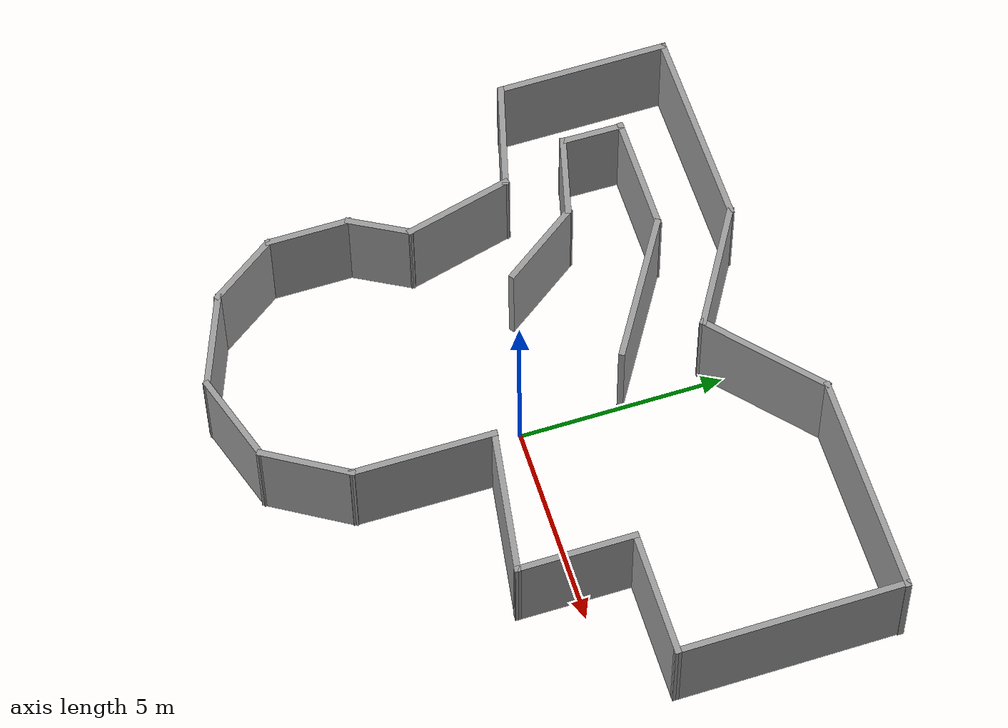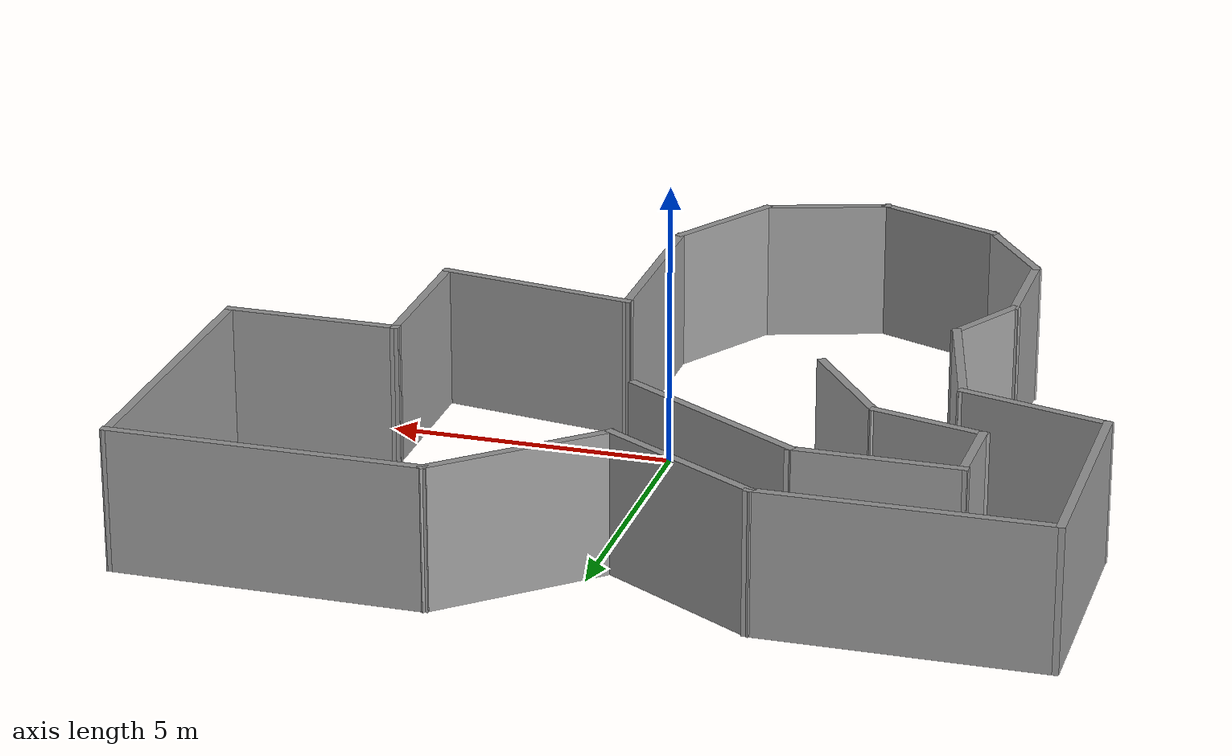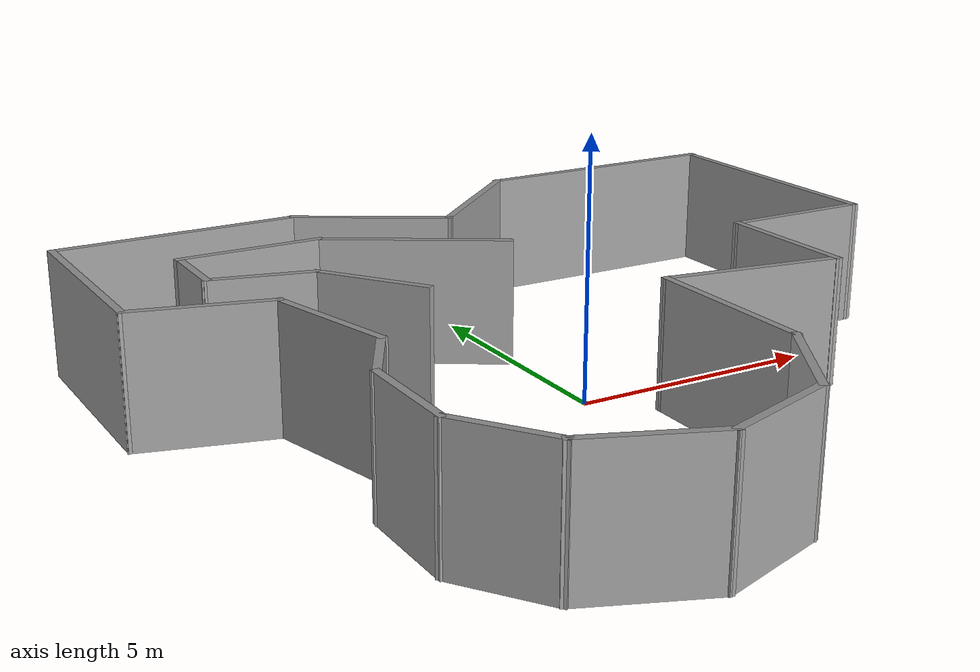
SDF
<?xml version='1.0'?>
<sdf version='1.7'>
  <model name='muri_mix'>
    <pose>-0.192855 -0.0559 0 0 -0 0</pose>
    <link name='Wall_1'>
      <collision name='Wall_1_Collision'>
        <geometry>
          <box>
            <size>4.26138 0.15 2.5</size>
          </box>
        </geometry>
        <pose>0 0 1.25 0 -0 0</pose>
      </collision>
      <visual name='Wall_1_Visual'>
        <pose>0 0 1.25 0 -0 0</pose>
        <geometry>
          <box>
            <size>4.26138 0.15 2.5</size>
          </box>
        </geometry>
        <material>
          <script>
            <uri>file://media/materials/scripts/gazebo.material</uri>
            <name>Gazebo/Grey</name>
          </script>
          <ambient>1 1 1 1</ambient>
        </material>
        <meta>
          <layer>0</layer>
        </meta>
      </visual>
      <pose>-7.67157 4.10976 0 0 -0 1.57401</pose>
    </link>
    <link name='Wall_10'>
      <collision name='Wall_10_Collision'>
        <geometry>
          <box>
            <size>3.53515 0.15 2.5</size>
          </box>
        </geometry>
        <pose>0 0 1.25 0 -0 0</pose>
      </collision>
      <visual name='Wall_10_Visual'>
        <pose>0 0 1.25 0 -0 0</pose>
        <geometry>
          <box>
            <size>3.53515 0.15 2.5</size>
          </box>
        </geometry>
        <material>
          <script>
            <uri>file://media/materials/scripts/gazebo.material</uri>
            <name>Gazebo/Grey</name>
          </script>
          <ambient>1 1 1 1</ambient>
        </material>
        <meta>
          <layer>0</layer>
        </meta>
      </visual>
      <pose>1.21216 -2.58086 0 0 -0 -1.57575</pose>
    </link>
    <link name='Wall_11'>
      <collision name='Wall_11_Collision'>
        <geometry>
          <box>
            <size>2.322 0.15 2.5</size>
          </box>
        </geometry>
        <pose>0 0 1.25 0 -0 0</pose>
      </collision>
      <visual name='Wall_11_Visual'>
        <pose>0 0 1.25 0 -0 0</pose>
        <geometry>
          <box>
            <size>2.322 0.15 2.5</size>
          </box>
        </geometry>
        <material>
          <script>
            <uri>file://media/materials/scripts/gazebo.material</uri>
            <name>Gazebo/Grey</name>
          </script>
          <ambient>1 1 1 1</ambient>
        </material>
        <meta>
          <layer>0</layer>
        </meta>
      </visual>
      <pose>0.640187 -5.20166 0 0 -0 -2.11644</pose>
    </link>
    <link name='Wall_16'>
      <collision name='Wall_16_Collision'>
        <geometry>
          <box>
            <size>1.65465 0.15 2.5</size>
          </box>
        </geometry>
        <pose>0 0 1.25 0 -0 0</pose>
      </collision>
      <visual name='Wall_16_Visual'>
        <pose>0 0 1.25 0 -0 0</pose>
        <geometry>
          <box>
            <size>1.65465 0.15 2.5</size>
          </box>
        </geometry>
        <material>
          <script>
            <uri>file://media/materials/scripts/gazebo.material</uri>
            <name>Gazebo/Grey</name>
          </script>
          <ambient>1 1 1 1</ambient>
        </material>
        <meta>
          <layer>0</layer>
        </meta>
      </visual>
      <pose>-4.88204 -1.81965 0 0 -0 1.06422</pose>
    </link>
    <link name='Wall_18'>
      <collision name='Wall_18_Collision'>
        <geometry>
          <box>
            <size>2.75 0.15 2.5</size>
          </box>
        </geometry>
        <pose>0 0 1.25 0 -0 0</pose>
      </collision>
      <visual name='Wall_18_Visual'>
        <pose>0 0 1.25 0 -0 0</pose>
        <geometry>
          <box>
            <size>2.75 0.15 2.5</size>
          </box>
        </geometry>
        <material>
          <script>
            <uri>file://media/materials/scripts/gazebo.material</uri>
            <name>Gazebo/Grey</name>
          </script>
          <ambient>1 1 1 1</ambient>
        </material>
        <meta>
          <layer>0</layer>
        </meta>
      </visual>
      <pose>-6.40926 1.71762 0 0 -0 -0.261799</pose>
    </link>
    <link name='Wall_21'>
      <collision name='Wall_21_Collision'>
        <geometry>
          <box>
            <size>5.02028 0.15 2.5</size>
          </box>
        </geometry>
        <pose>0 0 1.25 0 -0 0</pose>
      </collision>
      <visual name='Wall_21_Visual'>
        <pose>0 0 1.25 0 -0 0</pose>
        <geometry>
          <box>
            <size>5.02028 0.15 2.5</size>
          </box>
        </geometry>
        <material>
          <script>
            <uri>file://media/materials/scripts/gazebo.material</uri>
            <name>Gazebo/Grey</name>
          </script>
          <ambient>1 1 1 1</ambient>
        </material>
        <meta>
          <layer>0</layer>
        </meta>
      </visual>
      <pose>-5.22302 6.18555 0 0 -0 0.00826</pose>
    </link>
    <link name='Wall_22'>
      <collision name='Wall_22_Collision'>
        <geometry>
          <box>
            <size>3.28763 0.15 2.5</size>
          </box>
        </geometry>
        <pose>0 0 1.25 0 -0 0</pose>
      </collision>
      <visual name='Wall_22_Visual'>
        <pose>0 0 1.25 0 -0 0</pose>
        <geometry>
          <box>
            <size>3.28763 0.15 2.5</size>
          </box>
        </geometry>
        <material>
          <script>
            <uri>file://media/materials/scripts/gazebo.material</uri>
            <name>Gazebo/Grey</name>
          </script>
          <ambient>1 1 1 1</ambient>
        </material>
        <meta>
          <layer>0</layer>
        </meta>
      </visual>
      <pose>-1.45568 5.41055 0 0 -0 -0.531497</pose>
    </link>
    <link name='Wall_26'>
      <collision name='Wall_26_Collision'>
        <geometry>
          <box>
            <size>3.42031 0.15 2.5</size>
          </box>
        </geometry>
        <pose>0 0 1.25 0 -0 0</pose>
      </collision>
      <visual name='Wall_26_Visual'>
        <pose>0 0 1.25 0 -0 0</pose>
        <geometry>
          <box>
            <size>3.42031 0.15 2.5</size>
          </box>
        </geometry>
        <material>
          <script>
            <uri>file://media/materials/scripts/gazebo.material</uri>
            <name>Gazebo/Grey</name>
          </script>
          <ambient>1 1 1 1</ambient>
        </material>
        <meta>
          <layer>0</layer>
        </meta>
      </visual>
      <pose>1.11407 5.70714 0 0 -0 0.731035</pose>
    </link>
    <link name='Wall_28'>
      <collision name='Wall_28_Collision'>
        <geometry>
          <box>
            <size>2.12243 0.15 2.5</size>
          </box>
        </geometry>
        <pose>0 0 1.25 0 -0 0</pose>
      </collision>
      <visual name='Wall_28_Visual'>
        <pose>0 0 1.25 0 -0 0</pose>
        <geometry>
          <box>
            <size>2.12243 0.15 2.5</size>
          </box>
        </geometry>
        <material>
          <script>
            <uri>file://media/materials/scripts/gazebo.material</uri>
            <name>Gazebo/Grey</name>
          </script>
          <ambient>1 1 1 1</ambient>
        </material>
        <meta>
          <layer>0</layer>
        </meta>
      </visual>
      <pose>-5.24706 -3.44621 0 0 -0 -1.5708</pose>
    </link>
    <link name='Wall_31'>
      <collision name='Wall_31_Collision'>
        <geometry>
          <box>
            <size>2.00158 0.15 2.5</size>
          </box>
        </geometry>
        <pose>0 0 1.25 0 -0 0</pose>
      </collision>
      <visual name='Wall_31_Visual'>
        <pose>0 0 1.25 0 -0 0</pose>
        <geometry>
          <box>
            <size>2.00158 0.15 2.5</size>
          </box>
        </geometry>
        <material>
          <script>
            <uri>file://media/materials/scripts/gazebo.material</uri>
            <name>Gazebo/Grey</name>
          </script>
          <ambient>1 1 1 1</ambient>
        </material>
        <meta>
          <layer>0</layer>
        </meta>
      </visual>
      <pose>-4.7146 -5.18978 0 0 -0 -0.958021</pose>
    </link>
    <link name='Wall_34'>
      <collision name='Wall_34_Collision'>
        <geometry>
          <box>
            <size>2.47274 0.15 2.5</size>
          </box>
        </geometry>
        <pose>0 0 1.25 0 -0 0</pose>
      </collision>
      <visual name='Wall_34_Visual'>
        <pose>0 0 1.25 0 -0 0</pose>
        <geometry>
          <box>
            <size>2.47274 0.15 2.5</size>
          </box>
        </geometry>
        <material>
          <script>
            <uri>file://media/materials/scripts/gazebo.material</uri>
            <name>Gazebo/Grey</name>
          </script>
          <ambient>1 1 1 1</ambient>
        </material>
        <meta>
          <layer>0</layer>
        </meta>
      </visual>
      <pose>-3.10334 -6.37721 0 0 -0 -0.379364</pose>
    </link>
    <link name='Wall_37'>
      <collision name='Wall_37_Collision'>
        <geometry>
          <box>
            <size>2.35761 0.15 2.5</size>
          </box>
        </geometry>
        <pose>0 0 1.25 0 -0 0</pose>
      </collision>
      <visual name='Wall_37_Visual'>
        <pose>0 0 1.25 0 -0 0</pose>
        <geometry>
          <box>
            <size>2.35761 0.15 2.5</size>
          </box>
        </geometry>
        <material>
          <script>
            <uri>file://media/materials/scripts/gazebo.material</uri>
            <name>Gazebo/Grey</name>
          </script>
          <ambient>1 1 1 1</ambient>
        </material>
        <meta>
          <layer>0</layer>
        </meta>
      </visual>
      <pose>-0.973977 -6.46863 0 0 -0 0.311848</pose>
    </link>
    <link name='Wall_39'>
      <collision name='Wall_39_Collision'>
        <geometry>
          <box>
            <size>2.77141 0.15 2.5</size>
          </box>
        </geometry>
        <pose>0 0 1.25 0 -0 0</pose>
      </collision>
      <visual name='Wall_39_Visual'>
        <pose>0 0 1.25 0 -0 0</pose>
        <geometry>
          <box>
            <size>2.77141 0.15 2.5</size>
          </box>
        </geometry>
        <material>
          <script>
            <uri>file://media/materials/scripts/gazebo.material</uri>
            <name>Gazebo/Grey</name>
          </script>
          <ambient>1 1 1 1</ambient>
        </material>
        <meta>
          <layer>0</layer>
        </meta>
      </visual>
      <pose>-4.83528 0.109673 0 0 -0 -1.32552</pose>
    </link>
    <link name='Wall_41'>
      <collision name='Wall_41_Collision'>
        <geometry>
          <box>
            <size>3.64593 0.15 2.5</size>
          </box>
        </geometry>
        <pose>0 0 1.25 0 -0 0</pose>
      </collision>
      <visual name='Wall_41_Visual'>
        <pose>0 0 1.25 0 -0 0</pose>
        <geometry>
          <box>
            <size>3.64593 0.15 2.5</size>
          </box>
        </geometry>
        <material>
          <script>
            <uri>file://media/materials/scripts/gazebo.material</uri>
            <name>Gazebo/Grey</name>
          </script>
          <ambient>1 1 1 1</ambient>
        </material>
        <meta>
          <layer>0</layer>
        </meta>
      </visual>
      <pose>2.94765 -1.15764 0 0 -0 -0.15466</pose>
    </link>
    <link name='Wall_42'>
      <collision name='Wall_42_Collision'>
        <geometry>
          <box>
            <size>2.95 0.15 2.5</size>
          </box>
        </geometry>
        <pose>0 0 1.25 0 -0 0</pose>
      </collision>
      <visual name='Wall_42_Visual'>
        <pose>0 0 1.25 0 -0 0</pose>
        <geometry>
          <box>
            <size>2.95 0.15 2.5</size>
          </box>
        </geometry>
        <material>
          <script>
            <uri>file://media/materials/scripts/gazebo.material</uri>
            <name>Gazebo/Grey</name>
          </script>
          <ambient>1 1 1 1</ambient>
        </material>
        <meta>
          <layer>0</layer>
        </meta>
      </visual>
      <pose>4.67475 -0.0269 0 0 -0 1.5708</pose>
    </link>
    <link name='Wall_44'>
      <collision name='Wall_44_Collision'>
        <geometry>
          <box>
            <size>3.15671 0.15 2.5</size>
          </box>
        </geometry>
        <pose>0 0 1.25 0 -0 0</pose>
      </collision>
      <visual name='Wall_44_Visual'>
        <pose>0 0 1.25 0 -0 0</pose>
        <geometry>
          <box>
            <size>3.15671 0.15 2.5</size>
          </box>
        </geometry>
        <material>
          <script>
            <uri>file://media/materials/scripts/gazebo.material</uri>
            <name>Gazebo/Grey</name>
          </script>
          <ambient>1 1 1 1</ambient>
        </material>
        <meta>
          <layer>0</layer>
        </meta>
      </visual>
      <pose>6.17808 1.365 0 0 -0 -0.005387</pose>
    </link>
    <link name='Wall_46'>
      <collision name='Wall_46_Collision'>
        <geometry>
          <box>
            <size>2.10303 0.15 2.5</size>
          </box>
        </geometry>
        <pose>0 0 1.25 0 -0 0</pose>
      </collision>
      <visual name='Wall_46_Visual'>
        <pose>0 0 1.25 0 -0 0</pose>
        <geometry>
          <box>
            <size>2.10303 0.15 2.5</size>
          </box>
        </geometry>
        <material>
          <script>
            <uri>file://media/materials/scripts/gazebo.material</uri>
            <name>Gazebo/Grey</name>
          </script>
          <ambient>1 1 1 1</ambient>
        </material>
        <meta>
          <layer>0</layer>
        </meta>
      </visual>
      <pose>-4.89191 2.79253 0 0 -0 -0.24769</pose>
    </link>
    <link name='Wall_47'>
      <collision name='Wall_47_Collision'>
        <geometry>
          <box>
            <size>2.33473 0.15 2.5</size>
          </box>
        </geometry>
        <pose>0 0 1.25 0 -0 0</pose>
      </collision>
      <visual name='Wall_47_Visual'>
        <pose>0 0 1.25 0 -0 0</pose>
        <geometry>
          <box>
            <size>2.33473 0.15 2.5</size>
          </box>
        </geometry>
        <material>
          <script>
            <uri>file://media/materials/scripts/gazebo.material</uri>
            <name>Gazebo/Grey</name>
          </script>
          <ambient>1 1 1 1</ambient>
        </material>
        <meta>
          <layer>0</layer>
        </meta>
      </visual>
      <pose>-3.2873 1.66629 0 0 -0 -0.947325</pose>
    </link>
    <link name='Wall_5'>
      <collision name='Wall_5_Collision'>
        <geometry>
          <box>
            <size>5.5 0.15 2.5</size>
          </box>
        </geometry>
        <pose>0 0 1.25 0 -0 0</pose>
      </collision>
      <visual name='Wall_5_Visual'>
        <pose>0 0 1.25 0 -0 0</pose>
        <geometry>
          <box>
            <size>5.5 0.15 2.5</size>
          </box>
        </geometry>
        <material>
          <script>
            <uri>file://media/materials/scripts/gazebo.material</uri>
            <name>Gazebo/Grey</name>
          </script>
          <ambient>1 1 1 1</ambient>
        </material>
        <meta>
          <layer>0</layer>
        </meta>
      </visual>
      <pose>5.00641 6.79884 0 0 -0 0</pose>
    </link>
    <link name='Wall_50'>
      <collision name='Wall_50_Collision'>
        <geometry>
          <box>
            <size>1.59133 0.15 2.5</size>
          </box>
        </geometry>
        <pose>0 0 1.25 0 -0 0</pose>
      </collision>
      <visual name='Wall_50_Visual'>
        <pose>0 0 1.25 0 -0 0</pose>
        <geometry>
          <box>
            <size>1.59133 0.15 2.5</size>
          </box>
        </geometry>
        <material>
          <script>
            <uri>file://media/materials/scripts/gazebo.material</uri>
            <name>Gazebo/Grey</name>
          </script>
          <ambient>1 1 1 1</ambient>
        </material>
        <meta>
          <layer>0</layer>
        </meta>
      </visual>
      <pose>-5.81581 3.75257 0 0 -0 1.56024</pose>
    </link>
    <link name='Wall_51'>
      <collision name='Wall_51_Collision'>
        <geometry>
          <box>
            <size>2.96296 0.15 2.5</size>
          </box>
        </geometry>
        <pose>0 0 1.25 0 -0 0</pose>
      </collision>
      <visual name='Wall_51_Visual'>
        <pose>0 0 1.25 0 -0 0</pose>
        <geometry>
          <box>
            <size>2.96296 0.15 2.5</size>
          </box>
        </geometry>
        <material>
          <script>
            <uri>file://media/materials/scripts/gazebo.material</uri>
            <name>Gazebo/Grey</name>
          </script>
          <ambient>1 1 1 1</ambient>
        </material>
        <meta>
          <layer>0</layer>
        </meta>
      </visual>
      <pose>-4.41695 4.47319 0 0 -0 0</pose>
    </link>
    <link name='Wall_52'>
      <collision name='Wall_52_Collision'>
        <geometry>
          <box>
            <size>3.78349 0.15 2.5</size>
          </box>
        </geometry>
        <pose>0 0 1.25 0 -0 0</pose>
      </collision>
      <visual name='Wall_52_Visual'>
        <pose>0 0 1.25 0 -0 0</pose>
        <geometry>
          <box>
            <size>3.78349 0.15 2.5</size>
          </box>
        </geometry>
        <material>
          <script>
            <uri>file://media/materials/scripts/gazebo.material</uri>
            <name>Gazebo/Grey</name>
          </script>
          <ambient>1 1 1 1</ambient>
        </material>
        <meta>
          <layer>0</layer>
        </meta>
      </visual>
      <pose>-1.45925 3.51236 0 0 -0 -0.547444</pose>
    </link>
    <link name='Wall_6'>
      <collision name='Wall_6_Collision'>
        <geometry>
          <box>
            <size>5.59197 0.15 2.5</size>
          </box>
        </geometry>
        <pose>0 0 1.25 0 -0 0</pose>
      </collision>
      <visual name='Wall_6_Visual'>
        <pose>0 0 1.25 0 -0 0</pose>
        <geometry>
          <box>
            <size>5.59197 0.15 2.5</size>
          </box>
        </geometry>
        <material>
          <script>
            <uri>file://media/materials/scripts/gazebo.material</uri>
            <name>Gazebo/Grey</name>
          </script>
          <ambient>1 1 1 1</ambient>
        </material>
        <meta>
          <layer>0</layer>
        </meta>
      </visual>
      <pose>7.67136 4.07787 0 0 -0 -1.5671</pose>
    </link>
    <static>1</static>
  </model>
</sdf>
